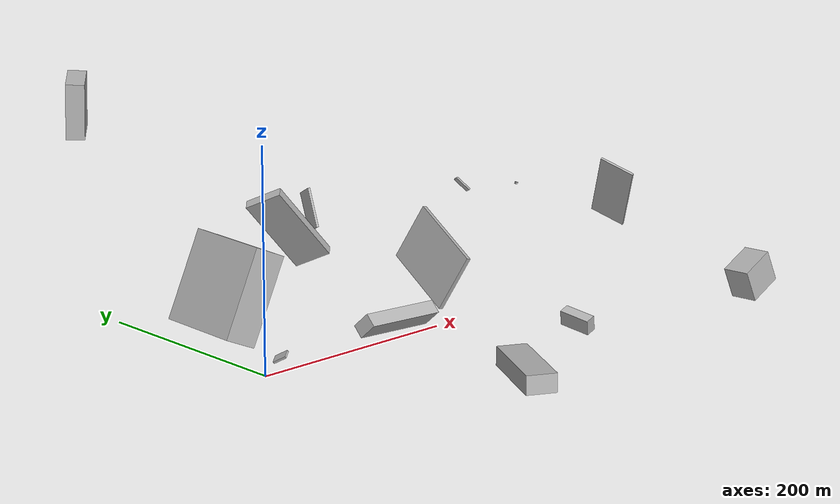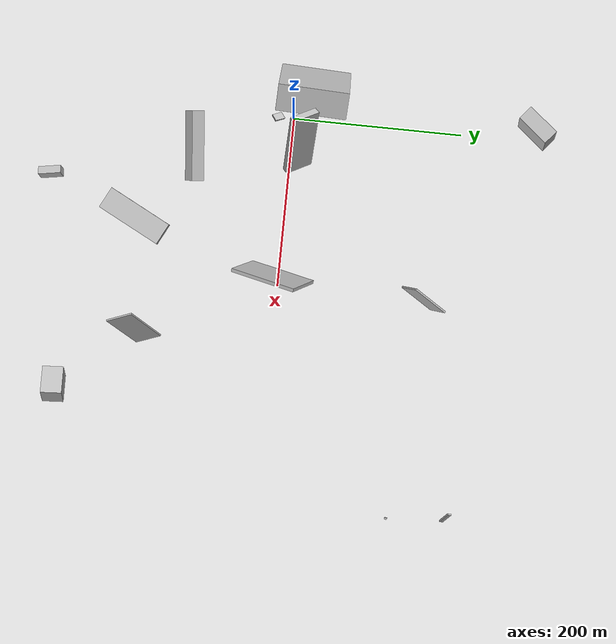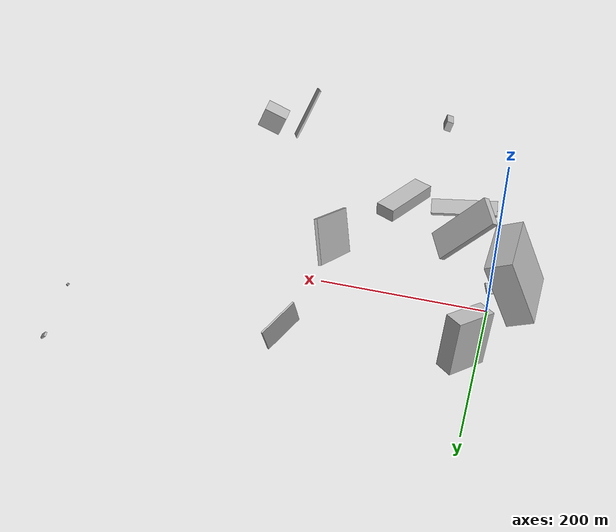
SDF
<sdf version="1.6">
 <world name="default">
  <scene>
   <sky><clouds><speed>12</speed></clouds></sky>
   <ambient>0.4 0.4 0.4 1</ambient>
   <background>0.7 0.7 0.7 1</background>
   <shadows>1</shadows>
  </scene>
  <gravity>0 0 -9.8066</gravity>
  <magnetic_field>6e-06 2.3e-05 -4.2e-05</magnetic_field>
  <physics default="0" name="default_physics" type="ode">
   <ode>
    <solver>
     <type>quick</type>
     <iters>10</iters>
     <sor>1.0</sor>
     <use_dynamic_moi_rescaling>0</use_dynamic_moi_rescaling>
    </solver>
    <constraints>
     <cfm>0</cfm>
     <erp>0.2</erp>
     <contact_max_correcting_vel>100</contact_max_correcting_vel>
     <contact_surface_layer>0.001</contact_surface_layer>
    </constraints>
   </ode>
   <max_step_size>0.004</max_step_size>
   <real_time_factor>1</real_time_factor>
   <real_time_update_rate>250</real_time_update_rate>
  </physics>
  <light name="sun" type="directional">
   <pose>0 0 10 0 0 0</pose>
   <diffuse>0.8 0.8 0.8 1</diffuse>
   <specular>0.2 0.2 0.2 1</specular>
   <attenuation>
    <range>1000</range>
    <constant>0.9</constant>
    <linear>0.01</linear>
    <quadratic>0.001</quadratic>
   </attenuation>
   <direction>-0.5 0.1 -0.9</direction>
  </light>
  <model name="building_1">
   <static>0</static>
   <pose>5.293658608290151 -15.374513375724888 22.490974011544974 1.9675982744778056 -0.5150605947473521 -1.1554666393559392</pose>
   <link name="link">
    <gravity>0</gravity>
    <pose>0 0 4.5 0 0 0</pose>
    <collision name="collision"><geometry><box><size>13 2 9</size></box></geometry></collision>
    <visual name="visual">
     <cast_shadows>0</cast_shadows>
     <geometry><box><size>13 2 9</size></box></geometry>
     <material>
      <script>
       <uri>model://HANNAS_wall/materials/scripts</uri>
       <uri>model://HANNAS_wall/materials/textures</uri>
       <name>vrc/HANNAS_wall</name>
      </script>
     </material>
    </visual>
   </link>
  </model>
  <model name="building_2">
   <static>0</static>
   <pose>454.4225547440658 151.92045506945317 56.22782825261378 2.946583250193524 -0.010039279907642584 -1.879542127511223</pose>
   <link name="link">
    <gravity>0</gravity>
    <pose>0 0 1.0 0 0 0</pose>
    <collision name="collision"><geometry><box><size>3 2 2</size></box></geometry></collision>
    <visual name="visual">
     <cast_shadows>0</cast_shadows>
     <geometry><box><size>3 2 2</size></box></geometry>
     <material>
      <script>
       <uri>model://HANNAS_wall/materials/scripts</uri>
       <uri>model://HANNAS_wall/materials/textures</uri>
       <name>vrc/HANNAS_wall</name>
      </script>
     </material>
    </visual>
   </link>
  </model>
  <model name="building_3">
   <static>0</static>
   <pose>39.724521459630495 14.044769101917641 122.22577952947933 2.154195665936156 -0.43284711110868024 -1.0649864187970743</pose>
   <link name="link">
    <gravity>0</gravity>
    <pose>0 0 4.0 0 0 0</pose>
    <collision name="collision"><geometry><box><size>33 80 8</size></box></geometry></collision>
    <visual name="visual">
     <cast_shadows>0</cast_shadows>
     <geometry><box><size>33 80 8</size></box></geometry>
     <material>
      <script>
       <uri>model://HANNAS_wall/materials/scripts</uri>
       <uri>model://HANNAS_wall/materials/textures</uri>
       <name>vrc/HANNAS_wall</name>
      </script>
     </material>
    </visual>
   </link>
  </model>
  <model name="building_4">
   <static>0</static>
   <pose>116.3718467342459 -210.24344161471942 18.383877444949416 1.572864357690985 0.0024709289029390324 2.6643366341665846</pose>
   <link name="link">
    <gravity>0</gravity>
    <pose>0 0 40.0 0 0 0</pose>
    <collision name="collision"><geometry><box><size>27 17 80</size></box></geometry></collision>
    <visual name="visual">
     <cast_shadows>0</cast_shadows>
     <geometry><box><size>27 17 80</size></box></geometry>
     <material>
      <script>
       <uri>model://HANNAS_wall/materials/scripts</uri>
       <uri>model://HANNAS_wall/materials/textures</uri>
       <name>vrc/HANNAS_wall</name>
      </script>
     </material>
    </visual>
   </link>
  </model>
  <model name="building_5">
   <static>0</static>
   <pose>197.7765593737874 162.0471279419325 56.026365580912554 0.36176980958404725 0.14608191129714654 2.6479008166665587</pose>
   <link name="link">
    <gravity>0</gravity>
    <pose>0 0 18.5 0 0 0</pose>
    <collision name="collision"><geometry><box><size>2 46 37</size></box></geometry></collision>
    <visual name="visual">
     <cast_shadows>0</cast_shadows>
     <geometry><box><size>2 46 37</size></box></geometry>
     <material>
      <script>
       <uri>model://HANNAS_wall/materials/scripts</uri>
       <uri>model://HANNAS_wall/materials/textures</uri>
       <name>vrc/HANNAS_wall</name>
      </script>
     </material>
    </visual>
   </link>
  </model>
  <model name="building_6">
   <static>0</static>
   <pose>267.01924981785885 -164.08050306784816 136.74003111025783 0.8956640999854975 -0.9714015352534324 -2.2001371466746455</pose>
   <link name="link">
    <gravity>0</gravity>
    <pose>0 0 15.5 0 0 0</pose>
    <collision name="collision"><geometry><box><size>65 2 31</size></box></geometry></collision>
    <visual name="visual">
     <cast_shadows>0</cast_shadows>
     <geometry><box><size>65 2 31</size></box></geometry>
     <material>
      <script>
       <uri>model://HANNAS_wall/materials/scripts</uri>
       <uri>model://HANNAS_wall/materials/textures</uri>
       <name>vrc/HANNAS_wall</name>
      </script>
     </material>
    </visual>
   </link>
  </model>
  <model name="building_7">
   <static>0</static>
   <pose>92.60453225561656 -267.0227616103902 89.36377601773859 1.269022155836074 -0.146768220962765 1.7188526448044588</pose>
   <link name="link">
    <gravity>0</gravity>
    <pose>0 0 4.5 0 0 0</pose>
    <collision name="collision"><geometry><box><size>26 13 9</size></box></geometry></collision>
    <visual name="visual">
     <cast_shadows>0</cast_shadows>
     <geometry><box><size>26 13 9</size></box></geometry>
     <material>
      <script>
       <uri>model://HANNAS_wall/materials/scripts</uri>
       <uri>model://HANNAS_wall/materials/textures</uri>
       <name>vrc/HANNAS_wall</name>
      </script>
     </material>
    </visual>
   </link>
  </model>
  <model name="building_8">
   <static>0</static>
   <pose>7.126794045926276 264.96696100261903 161.93417802802952 0.12582856239781326 0.02753565662531581 -0.6988884689838556</pose>
   <link name="link">
    <gravity>0</gravity>
    <pose>0 0 26.0 0 0 0</pose>
    <collision name="collision"><geometry><box><size>17 38 52</size></box></geometry></collision>
    <visual name="visual">
     <cast_shadows>0</cast_shadows>
     <geometry><box><size>17 38 52</size></box></geometry>
     <material>
      <script>
       <uri>model://HANNAS_wall/materials/scripts</uri>
       <uri>model://HANNAS_wall/materials/textures</uri>
       <name>vrc/HANNAS_wall</name>
      </script>
     </material>
    </visual>
   </link>
  </model>
  <model name="building_9">
   <static>0</static>
   <pose>9.593237176427023 -112.85963286089427 68.74528198517277 1.6879666057370366 0.7578712713687024 1.740518899260476</pose>
   <link name="link">
    <gravity>0</gravity>
    <pose>0 0 40.0 0 0 0</pose>
    <collision name="collision"><geometry><box><size>18 12 80</size></box></geometry></collision>
    <visual name="visual">
     <cast_shadows>0</cast_shadows>
     <geometry><box><size>18 12 80</size></box></geometry>
     <material>
      <script>
       <uri>model://HANNAS_wall/materials/scripts</uri>
       <uri>model://HANNAS_wall/materials/textures</uri>
       <name>vrc/HANNAS_wall</name>
      </script>
     </material>
    </visual>
   </link>
  </model>
  <model name="building_10">
   <static>0</static>
   <pose>322.3606842800474 -243.8245941784602 67.1359318304597 0.08218203546333896 -1.1516001046908222 3.122725281373095</pose>
   <link name="link">
    <gravity>0</gravity>
    <pose>0 0 16.0 0 0 0</pose>
    <collision name="collision"><geometry><box><size>29 24 32</size></box></geometry></collision>
    <visual name="visual">
     <cast_shadows>0</cast_shadows>
     <geometry><box><size>29 24 32</size></box></geometry>
     <material>
      <script>
       <uri>model://HANNAS_wall/materials/scripts</uri>
       <uri>model://HANNAS_wall/materials/textures</uri>
       <name>vrc/HANNAS_wall</name>
      </script>
     </material>
    </visual>
   </link>
  </model>
  <model name="building_11">
   <static>0</static>
   <pose>453.82043375483596 218.31272699113126 34.952676381681016 0.5932123789023761 0.5640846464062461 -2.863562046815627</pose>
   <link name="link">
    <gravity>0</gravity>
    <pose>0 0 9.0 0 0 0</pose>
    <collision name="collision"><geometry><box><size>2 5 18</size></box></geometry></collision>
    <visual name="visual">
     <cast_shadows>0</cast_shadows>
     <geometry><box><size>2 5 18</size></box></geometry>
     <material>
      <script>
       <uri>model://HANNAS_wall/materials/scripts</uri>
       <uri>model://HANNAS_wall/materials/textures</uri>
       <name>vrc/HANNAS_wall</name>
      </script>
     </material>
    </visual>
   </link>
  </model>
  <model name="building_12">
   <static>0</static>
   <pose>181.0485648264621 -41.85880592528957 52.288308898218645 -1.1760332685773554 0.2920186408662072 -0.1032365017999709</pose>
   <link name="link">
    <gravity>0</gravity>
    <pose>0 0 40.0 0 0 0</pose>
    <collision name="collision"><geometry><box><size>4 54 80</size></box></geometry></collision>
    <visual name="visual">
     <cast_shadows>0</cast_shadows>
     <geometry><box><size>4 54 80</size></box></geometry>
     <material>
      <script>
       <uri>model://HANNAS_wall/materials/scripts</uri>
       <uri>model://HANNAS_wall/materials/textures</uri>
       <name>vrc/HANNAS_wall</name>
      </script>
     </material>
    </visual>
   </link>
  </model>
  <model name="building_13">
   <static>0</static>
   <pose>-23.07391574742606 60.24488428346929 78.11523097841861 1.5532626249006871 -1.142756283148119 -0.02365285602434786</pose>
   <link name="link">
    <gravity>0</gravity>
    <pose>0 0 40.0 0 0 0</pose>
    <collision name="collision"><geometry><box><size>80 31 80</size></box></geometry></collision>
    <visual name="visual">
     <cast_shadows>0</cast_shadows>
     <geometry><box><size>80 31 80</size></box></geometry>
     <material>
      <script>
       <uri>model://HANNAS_wall/materials/scripts</uri>
       <uri>model://HANNAS_wall/materials/textures</uri>
       <name>vrc/HANNAS_wall</name>
      </script>
     </material>
    </visual>
   </link>
  </model>
 </world>
</sdf>
